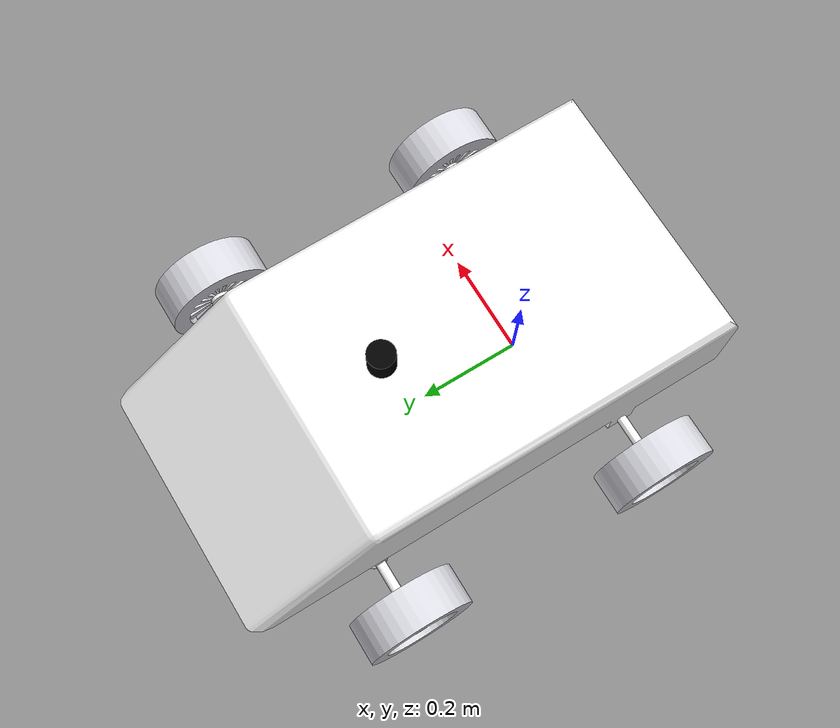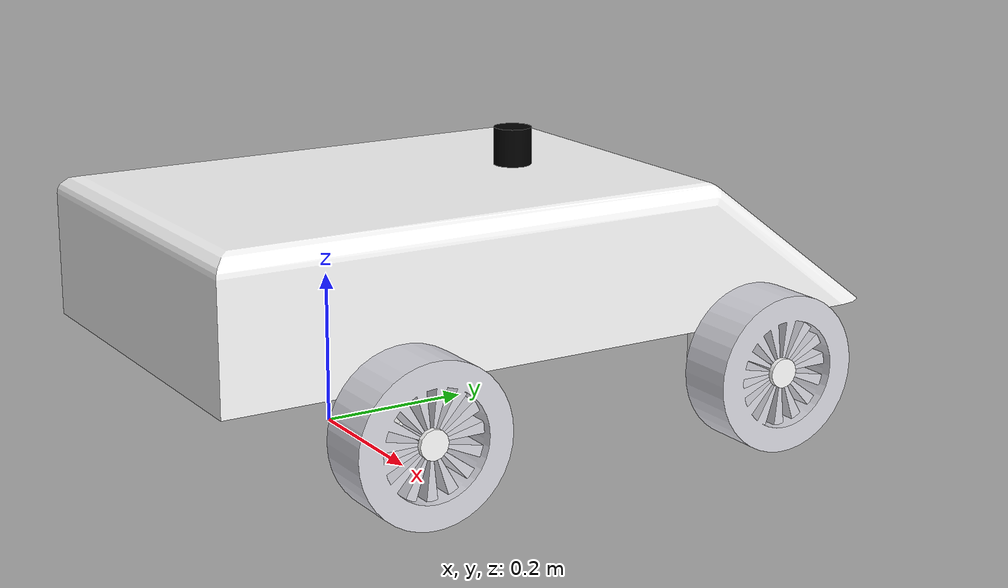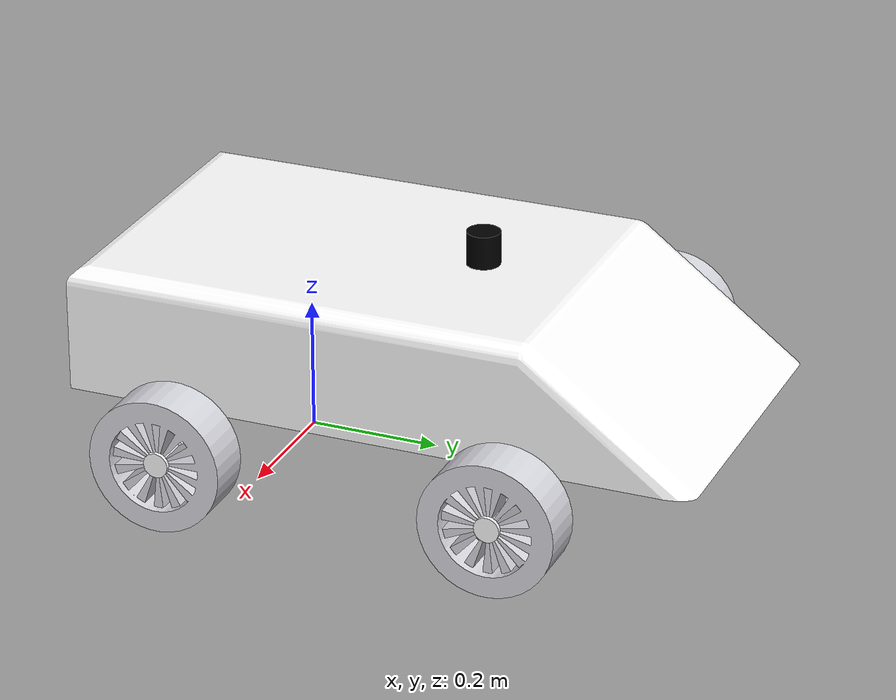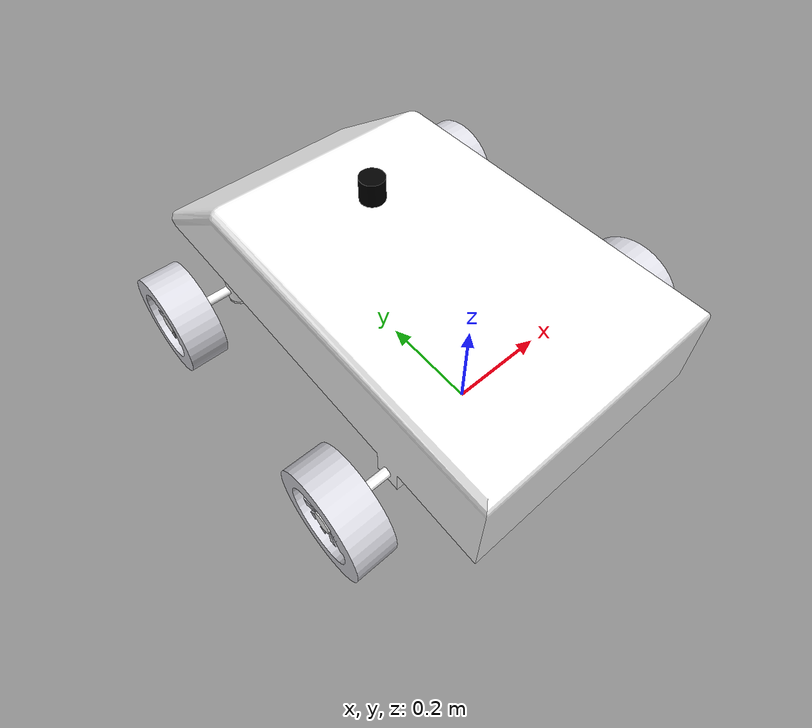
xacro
<?xml version="1.0" ?>
<robot
  name="rc_car" xmlns:xacro="http://ros.org/wiki/xacro">
  <link name="dummy_link"></link>
  <link
    name="base_link">
    <inertial>
      <origin
        xyz="0.0100398124317302 0.216493693108504 -0.150560882065846"
        rpy="0 0 0" />
      <mass
        value="81.2006356524099" />
      <inertia
        ixx="5.20113154197377"
        ixy="-7.34748734406685E-07"
        ixz="7.31547561899601E-07"
        iyy="6.70842753939257"
        iyz="-0.151956914849945"
        izz="2.00100554375488" />
    </inertial>
    <visual>
      <origin
        xyz="0 0 0"
        rpy="0 0 0" />
      <geometry>
        <mesh
          filename="package://rc_car/meshes/base_link.STL" />
      </geometry>
      <material
        name="">
        <color
          rgba="1 1 1 1" />
      </material>
    </visual>
    <collision>
      <origin
        xyz="0 0 0"
        rpy="0 0 0" />
      <geometry>
        <mesh
          filename="package://rc_car/meshes/base_link.STL" />
      </geometry>
    </collision>
  </link>
  <joint name="dummy_joint" type="fixed">
    <origin rpy="0 0 0" xyz="0 0 0" />
    <parent link="dummy_link"/>
    <child link="base_link"/>
  </joint>
  <link
    name="lidar_link">
    <inertial>
      <origin
        xyz="0 0.0254 0"
        rpy="0 0 0" />
      <mass
        value="0.102962959752612" />
      <inertia
        ixx="3.87494234831637E-05"
        ixy="4.22377939344323E-22"
        ixz="3.3881317890172E-21"
        iyy="3.32137915569974E-05"
        iyz="1.74242317984654E-21"
        izz="3.87494234831637E-05" />
    </inertial>
    <visual>
      <origin
        xyz="0 0 0"
        rpy="0 0 0" />
      <geometry>
        <mesh
          filename="package://rc_car/meshes/lidar_link.STL" />
      </geometry>
      <material
        name="">
        <color
          rgba="0 0 0 1" />
      </material>
    </visual>
    <collision>
      <origin
        xyz="0 0 0"
        rpy="0 0 0" />
      <geometry>
        <mesh
          filename="package://rc_car/meshes/lidar_link.STL" />
      </geometry>
    </collision>
  </link>
  <joint
    name="lidar_joint"
    type="fixed">
    <origin
      xyz="0.01004 0.27922 0.3175"
      rpy="1.5708 0 0" />
    <parent
      link="base_link" />
    <child
      link="lidar_link" />
    <axis
      xyz="0 0 0" />
  </joint>
  <link
    name="left_steer_link">
    <inertial>
      <origin
        xyz="0.0386783422333921 1.68364412689304E-09 7.9665894991976E-09"
        rpy="0 0 0" />
      <mass
        value="0.126216992487785" />
      <inertia
        ixx="3.63708729096065E-05"
        ixy="-3.16756217582672E-12"
        ixz="8.08644238083587E-12"
        iyy="0.000407091480264784"
        iyz="-2.42945953617092E-12"
        izz="0.000408125374379354" />
    </inertial>
    <visual>
      <origin
        xyz="0 0 0"
        rpy="0 0 0" />
      <geometry>
        <mesh
          filename="package://rc_car/meshes/left_steer_link.STL" />
      </geometry>
      <material
        name="">
        <color
          rgba="1 1 1 1" />
      </material>
    </visual>
    <collision>
      <origin
        xyz="0 0 0"
        rpy="0 0 0" />
      <geometry>
        <mesh
          filename="package://rc_car/meshes/left_steer_link.STL" />
      </geometry>
    </collision>
  </link>
  <joint
    name="left_steer_joint"
    type="revolute">
    <origin
      xyz="-0.21856 0.44009 0.1016"
      rpy="1.5708 0 3.1416" />
    <parent
      link="base_link" />
    <child
      link="left_steer_link" />
    <axis
      xyz="0 1 0" />
    <limit
      lower="-0.785"
      upper="0.785"
      effort="0"
      velocity="0" />
  </joint>
  <link
    name="top_left_wheel_link">
    <inertial>
      <origin
        xyz="-6.93889390390723E-18 0.0253999999999999 -5.55111512312578E-17"
        rpy="0 0 0" />
      <mass
        value="1.69084485468742" />
      <inertia
        ixx="0.00614139034354371"
        ixy="-1.0313057394333E-19"
        ixz="-9.75781955236954E-19"
        iyy="0.0108549336271319"
        iyz="1.44481185418543E-18"
        izz="0.00614139034354372" />
    </inertial>
    <visual>
      <origin
        xyz="0 0 0"
        rpy="0 0 0" />
      <geometry>
        <mesh
          filename="package://rc_car/meshes/top_left_wheel_link.STL" />
      </geometry>
      <material
        name="">
        <color
          rgba="0.850980392156863 0.850980392156863 0.882352941176471 1" />
      </material>
    </visual>
    <collision>
      <origin
        xyz="0 0 0"
        rpy="0 0 0" />
      <geometry>
        <mesh
          filename="package://rc_car/meshes/top_left_wheel_link.STL" />
      </geometry>
    </collision>
  </link>
  <joint
    name="top_left_wheel_joint"
    type="continuous">
    <origin
      xyz="0.1524 0 0"
      rpy="3.1416 -0.097923 -1.5708" />
    <parent
      link="left_steer_link" />
    <child
      link="top_left_wheel_link" />
    <axis
      xyz="0 1 0" />
  </joint>
  <link
    name="right_steer_link">
    <inertial>
      <origin
        xyz="0.0386783422333921 1.68364412689304E-09 7.9665894991976E-09"
        rpy="0 0 0" />
      <mass
        value="0.126216992487785" />
      <inertia
        ixx="3.63708729096065E-05"
        ixy="-3.1675621616159E-12"
        ixz="8.08644237194294E-12"
        iyy="0.000407091480264784"
        iyz="-2.42945953014108E-12"
        izz="0.000408125374379354" />
    </inertial>
    <visual>
      <origin
        xyz="0 0 0"
        rpy="0 0 0" />
      <geometry>
        <mesh
          filename="package://rc_car/meshes/right_steer_link.STL" />
      </geometry>
      <material
        name="">
        <color
          rgba="1 1 1 1" />
      </material>
    </visual>
    <collision>
      <origin
        xyz="0 0 0"
        rpy="0 0 0" />
      <geometry>
        <mesh
          filename="package://rc_car/meshes/right_steer_link.STL" />
      </geometry>
    </collision>
  </link>
  <joint
    name="right_steer_join"
    type="revolute">
    <origin
      xyz="0.23864 0.44009 0.1016"
      rpy="1.5708 0 0" />
    <parent
      link="base_link" />
    <child
      link="right_steer_link" />
    <axis
      xyz="0 1 0" />
    <limit
      lower="-0.785"
      upper="0.785"
      effort="0"
      velocity="0" />
  </joint>
  <link
    name="top_right_wheel_link">
    <inertial>
      <origin
        xyz="1.38777878078145E-17 0.0254 0"
        rpy="0 0 0" />
      <mass
        value="1.69084485468742" />
      <inertia
        ixx="0.00614139034354373"
        ixy="5.92126545813258E-19"
        ixz="-5.3270431448415E-19"
        iyy="0.0108549336271319"
        iyz="-3.78618859962923E-21"
        izz="0.00614139034354373" />
    </inertial>
    <visual>
      <origin
        xyz="0 0 0"
        rpy="0 0 0" />
      <geometry>
        <mesh
          filename="package://rc_car/meshes/top_right_wheel_link.STL" />
      </geometry>
      <material
        name="">
        <color
          rgba="0.850980392156863 0.850980392156863 0.882352941176471 1" />
      </material>
    </visual>
    <collision>
      <origin
        xyz="0 0 0"
        rpy="0 0 0" />
      <geometry>
        <mesh
          filename="package://rc_car/meshes/top_right_wheel_link.STL" />
      </geometry>
    </collision>
  </link>
  <joint
    name="top_right_wheel_joint"
    type="continuous">
    <origin
      xyz="0.1524 0 0"
      rpy="0 0 1.5708" />
    <parent
      link="right_steer_link" />
    <child
      link="top_right_wheel_link" />
    <axis
      xyz="0 1 0" />
  </joint>
  <link
    name="back_left_wheel_link">
    <inertial>
      <origin
        xyz="0 0.0254000000000001 -2.77555756156289E-17"
        rpy="0 0 0" />
      <mass
        value="1.69084485468742" />
      <inertia
        ixx="0.00614139034354372"
        ixy="-6.14950268371186E-19"
        ixz="-5.12706576940826E-19"
        iyy="0.0108549336271319"
        iyz="5.14967761120558E-22"
        izz="0.00614139034354372" />
    </inertial>
    <visual>
      <origin
        xyz="0 0 0"
        rpy="0 0 0" />
      <geometry>
        <mesh
          filename="package://rc_car/meshes/back_left_wheel_link.STL" />
      </geometry>
      <material
        name="">
        <color
          rgba="0.850980392156863 0.850980392156863 0.882352941176471 1" />
      </material>
    </visual>
    <collision>
      <origin
        xyz="0 0 0"
        rpy="0 0 0" />
      <geometry>
        <mesh
          filename="package://rc_car/meshes/back_left_wheel_link.STL" />
      </geometry>
    </collision>
  </link>
  <joint
    name="back_left_wheel_joint"
    type="continuous">
    <origin
      xyz="-0.37096 -0.067914 0.1016"
      rpy="1.5708 1.5708 0" />
    <parent
      link="base_link" />
    <child
      link="back_left_wheel_link" />
    <axis
      xyz="0 -1 0" />
  </joint>
  <link
    name="back_right_wheel_link">
    <inertial>
      <origin
        xyz="2.77555756156289E-17 0.0253999999999999 -1.38777878078145E-17"
        rpy="0 0 0" />
      <mass
        value="1.69084485468742" />
      <inertia
        ixx="0.00614139034354372"
        ixy="6.18337831473532E-19"
        ixz="-4.53236814542239E-19"
        iyy="0.0108549336271319"
        iyz="5.44109912370632E-20"
        izz="0.00614139034354372" />
    </inertial>
    <visual>
      <origin
        xyz="0 0 0"
        rpy="0 0 0" />
      <geometry>
        <mesh
          filename="package://rc_car/meshes/back_right_wheel_link.STL" />
      </geometry>
      <material
        name="">
        <color
          rgba="0.850980392156863 0.850980392156863 0.882352941176471 1" />
      </material>
    </visual>
    <collision>
      <origin
        xyz="0 0 0"
        rpy="0 0 0" />
      <geometry>
        <mesh
          filename="package://rc_car/meshes/back_right_wheel_link.STL" />
      </geometry>
    </collision>
  </link>
  <joint
    name="back_right_wheel_joint"
    type="continuous">
    <origin
      xyz="0.39104 -0.067914 0.1016"
      rpy="1.5708 -1.5708 0" />
    <parent
      link="base_link" />
    <child
      link="back_right_wheel_link" />
    <axis
      xyz="0 1 0" />
  </joint>

  <xacro:macro name="body_color">
    <visual>
    <material>
        <ambient>0.1 0.1 0.1 1</ambient>
        <diffuse>0.1 0.1 0.1 1</diffuse>
        <specular>0.1 0.1 0.1 1</specular>
        <emissive>0 0 0 0</emissive>
    </material>
    </visual>
  </xacro:macro>

  <gazebo reference="base_link">
    <xacro:body_color />
  </gazebo>

  <gazebo reference="lidar_link">
    <sensor name="lidar" type="ray">
      <pose>0.0 0.025 0.0 1.5708 0 0</pose>
      <always_on>true</always_on>
      <visualize>true</visualize>
      <update_rate>3</update_rate>
      <ray>
        <scan>
          <horizontal>
            <samples>720</samples>
            <resolution>1.00000</resolution>
            <min_angle>-3.140000</min_angle>
            <max_angle>3.140000</max_angle>
          </horizontal>
        </scan>
        <range>
          <min>0.20000</min>
          <max>5.0</max>
          <resolution>0.015000</resolution>
        </range>
        <noise>
          <type>gaussian</type>
          <mean>0.0</mean>
          <stddev>0.01</stddev>
        </noise>
      </ray>
      <plugin name="scan" filename="libgazebo_ros_ray_sensor.so">
        <ros>
          <remapping>~/out:=scan</remapping>
        </ros>
        <output_type>sensor_msgs/LaserScan</output_type>
        <frame_name>lidar_link</frame_name>
      </plugin>
    </sensor>
  </gazebo>

  <ros2_control name="GazeboSystem" type="system">
    <hardware>
        <plugin>gazebo_ros2_control/GazeboSystem</plugin>
    </hardware>

    # Velocity Controllers
    <joint name="back_right_wheel_joint">
        <command_interface name="velocity">
            <param name="min">-1000.0</param>
            <param name="max">1000.0</param>
        </command_interface>
        <state_interface name="position"/>
        <state_interface name="velocity"/>
    </joint>
    <joint name="back_left_wheel_joint">
        <command_interface name="velocity">
            <param name="min">-1000.0</param>
            <param name="max">1000.0</param>
        </command_interface>
        <state_interface name="position"/>
        <state_interface name="velocity"/>
    </joint>

    # Position Controller
    <joint name="left_steer_joint">
        <command_interface name="position">
            <param name="min">-0.785</param>
            <param name="max">0.785</param>
        </command_interface>
        <state_interface name="position"/>
        <state_interface name="velocity"/>
    </joint>
    <joint name="right_steer_join">
        <command_interface name="position">
            <param name="min">-0.785</param>
            <param name="max">0.785</param>
        </command_interface>
        <state_interface name="position"/>
        <state_interface name="velocity"/>
    </joint>
 </ros2_control>

 <gazebo>
    <plugin filename="libgazebo_ros2_control.so" name="gazebo_ros2_control">
        <parameters>$(find rc_car)/config/control.yaml</parameters>
    </plugin>
 </gazebo>

 <gazebo reference="base_link">
  <gravity>true</gravity>
  <sensor name="imu_sensor" type="imu">
    <always_on>true</always_on>
    <update_rate>100</update_rate>
    <visualize>false</visualize>
    <topic>__default_topic__</topic>
    <plugin filename="libgazebo_ros_imu_sensor.so" name="imu_plugin">
      <topicName>imu</topicName>
      <bodyName>base_link</bodyName>
      <updateRateHZ>10.0</updateRateHZ>
      <gaussianNoise>0.0</gaussianNoise>
      <xyzOffset>0 0 0</xyzOffset>
      <rpyOffset>0 0 0</rpyOffset>
      <frameName>base_link</frameName>
      <initialOrientationAsReference>false</initialOrientationAsReference>
    </plugin>
    <pose>0 0 0 0 0 0</pose>
  </sensor>
</gazebo>

</robot>
